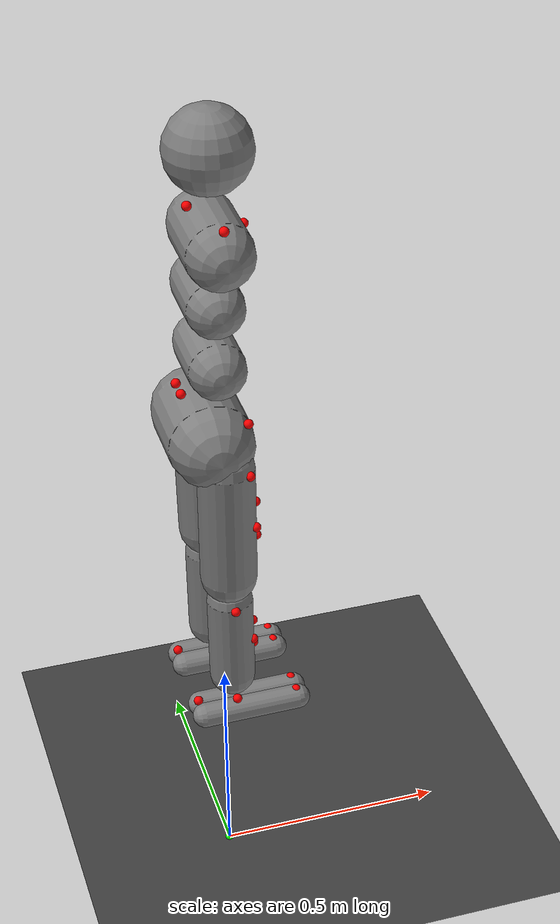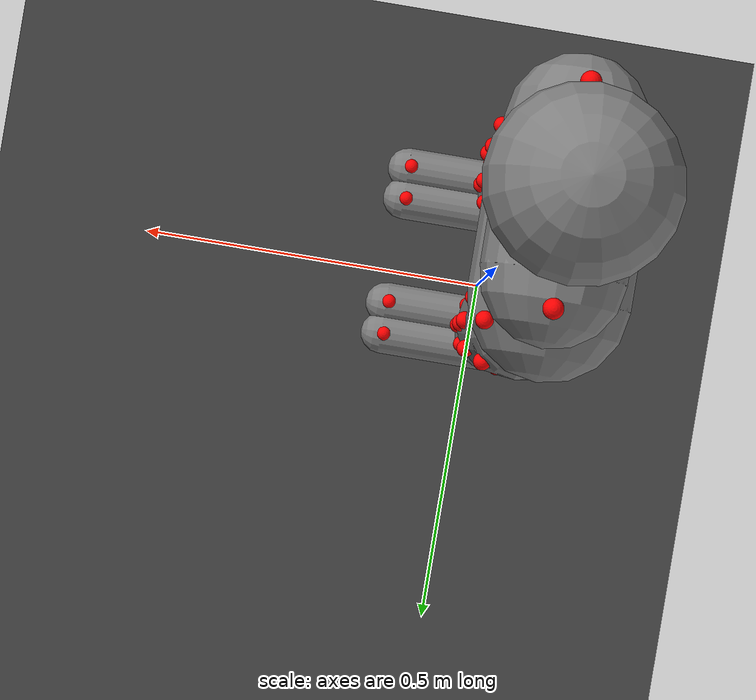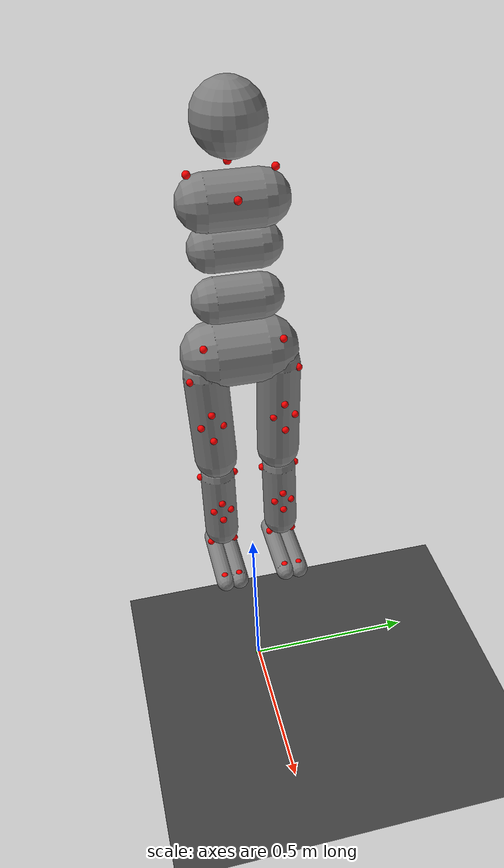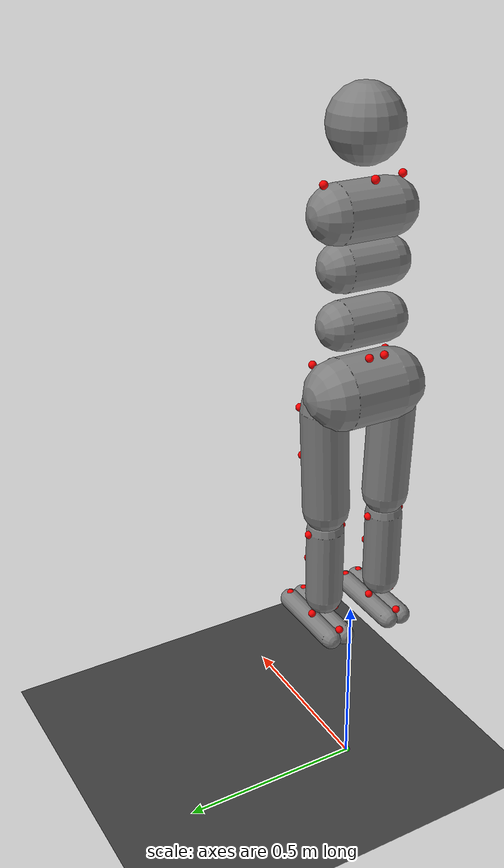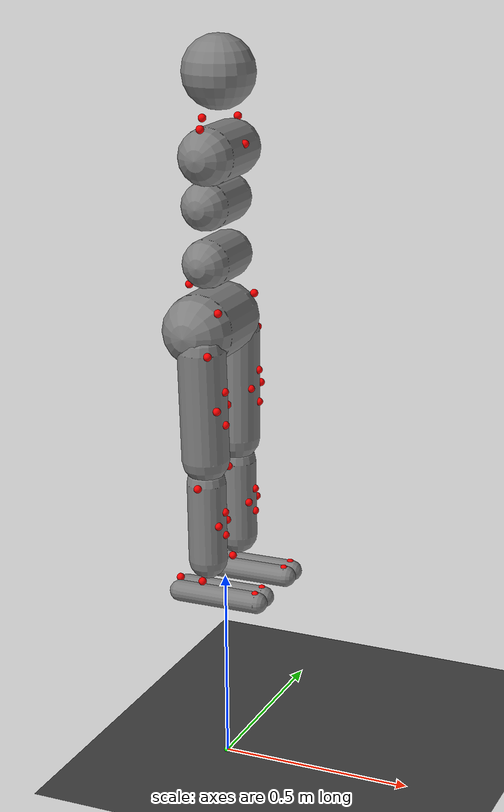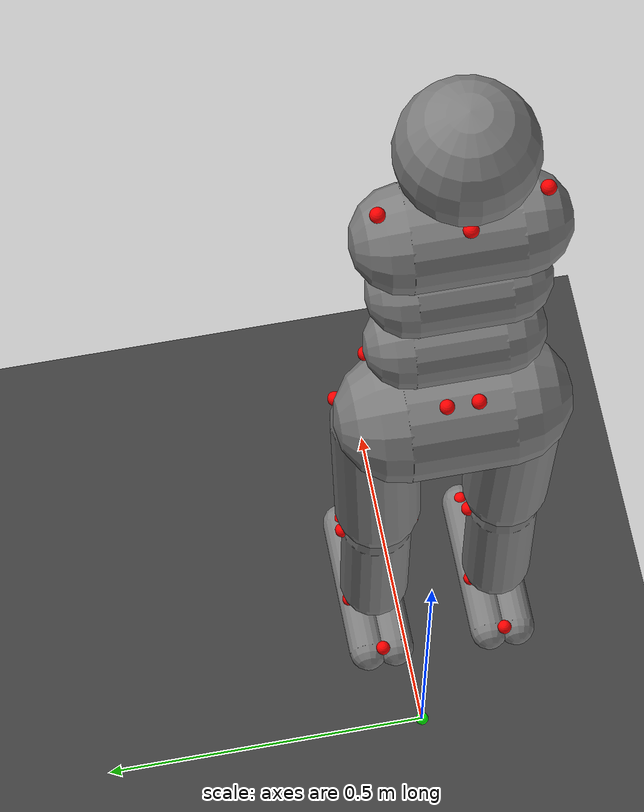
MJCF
<mujoco model="humanoid">
  <default>
    <default class="/"/>
    <default class="left_leg/"/>
    <default class="right_leg/"/>
  </default>
  <asset>
    <texture name="texplane" type="2d" builtin="checker" rgb1="0.20000000000000001 0.20000000000000001 0.20000000000000001" rgb2="0.29999999999999999 0.29999999999999999 0.29999999999999999" width="512" height="512"/>
    <material name="grid" class="/" texture="texplane" texrepeat="1 1" texuniform="true" reflectance="0.0"/>
  </asset>
  <worldbody>
    <geom name="floor" class="/" type="plane" conaffinity="1" size="100 100 0.20000000000000001" material="grid" pos="0 0 0"/>
    <body name="torso" pos="0 0 1.5919999999999999">
      <light name="top" class="/" mode="trackcom" pos="0 0 2"/>
      <camera name="back" class="/" mode="trackcom" pos="-3 0 1" xyaxes="0 -1 0 1 0 2"/>
      <camera name="side" class="/" mode="trackcom" pos="0 -3 1" xyaxes="1 0 0 0 1 2"/>
      <freejoint name="root"/>
      <geom name="torso" class="/" type="capsule" size="0.070000000000000007" fromto="0 -0.070000000000000007 0 0 0.070000000000000007 0"/>
      <site name="C7" class="/" type="sphere" rgba="1 0 0 1" size="0.01" pos="-0.044999999999999978 0 0.077942286340599479"/>
      <site name="CLAV" class="/" type="sphere" rgba="1 0 0 1" size="0.01" pos="0.065778483455013595 0 0.023941410032796814"/>
      <site name="LSHO" class="/" type="sphere" rgba="1 0 0 1" size="0.01" pos="4.2862637970157367e-18 0.10500000000000001 0.070000000000000007"/>
      <site name="RSHO" class="/" type="sphere" rgba="1 0 0 1" size="0.01" pos="4.2862637970157367e-18 -0.10500000000000001 0.070000000000000007"/>
      <geom name="upper_waist" class="/" type="capsule" size="0.059999999999999998" fromto="-0.01 -0.059999999999999998 -0.12 -0.01 0.059999999999999998 -0.12"/>
      <body name="head" pos="0 0 0.19">
        <geom name="head" class="/" type="sphere" size="0.089999999999999997" pos="0 0 0"/>
      </body>
      <camera name="egocentric" class="/" fovy="80.0" pos="0.089999999999999997 0 0" xyaxes="0 -1 0 0.10000000000000001 1 2"/>
      <body name="lower_waist" pos="-0.01 0 -0.26000000000000001" quat="1 0 -0.002 0">
        <geom name="lower_waist" class="/" type="capsule" size="0.059999999999999998" fromto="0 -0.059999999999999998 0 0 0.059999999999999998 0"/>
        <joint name="abdomen_z" class="/" type="hinge" pos="0 0 0.065000000000000002" axis="0 0 1" limited="true" solimplimit="0 0.98999999999999999 0.01" stiffness="20.0" range="-45 45" armature="0.01" damping="5.0"/>
        <joint name="abdomen_y" class="/" type="hinge" pos="0 0 0.065000000000000002" axis="0 1 0" limited="true" solimplimit="0 0.98999999999999999 0.01" stiffness="10.0" range="-75 30" armature="0.01" damping="5.0"/>
        <body name="pelvis" pos="0 0 -0.16500000000000001" quat="1 0 -0.002 0">
          <joint name="abdomen_x" class="/" type="hinge" pos="0 0 0.10000000000000001" axis="1 0 0" limited="true" solimplimit="0 0.98999999999999999 0.01" stiffness="10.0" range="-35 35" armature="0.01" damping="5.0"/>
          <geom name="butt" class="/" type="capsule" size="0.089999999999999997" fromto="-0.02 -0.070000000000000007 0 -0.02 0.070000000000000007 0"/>
          <site name="LASI" class="/" type="sphere" rgba="1 0 0 1" size="0.01" pos="0.048943999880708008 0.10500000000000001 0.057850884871788529"/>
          <site name="LPSI" class="/" type="sphere" rgba="1 0 0 1" size="0.01" pos="-0.066488008791476927 0.021000000000000001 0.0996938565740315"/>
          <site name="RASI" class="/" type="sphere" rgba="1 0 0 1" size="0.01" pos="0.048943999880708008 -0.10500000000000001 0.057850884871788529"/>
          <site name="RPSI" class="/" type="sphere" rgba="1 0 0 1" size="0.01" pos="-0.066488008791476927 -0.021000000000000001 0.0996938565740315"/>
          <site name="left_leg_site" class="/" size="9.9999999999999995e-07 9.9999999999999995e-07 9.9999999999999995e-07" pos="0 0.10000000000000001 -0.040000000000000001"/>
          <body pos="0 0.10000000000000001 -0.040000000000000001" name="left_leg/">
            <body name="left_leg/thigh">
              <joint name="left_leg/hip_x" class="left_leg/" type="hinge" axis="1 0 0" limited="true" solimplimit="0 0.98999999999999999 0.01" stiffness="10.0" range="-25 5" armature="0.01" damping="5.0"/>
              <joint name="left_leg/hip_z" class="left_leg/" type="hinge" axis="0 0 1" limited="true" solimplimit="0 0.98999999999999999 0.01" stiffness="10.0" range="-60 35" armature="0.01" damping="5.0"/>
              <joint name="left_leg/hip_y" class="left_leg/" type="hinge" axis="0 1 0" limited="true" solimplimit="0 0.98999999999999999 0.01" stiffness="20.0" range="-110 20" armature="0.01" damping="5.0"/>
              <geom name="left_leg/thigh" class="left_leg/" type="capsule" size="0.059999999999999998" fromto="0 0 0 0 -0.01 -0.28000000000000003"/>
              <site name="left_leg/LGT" class="left_leg/" type="sphere" rgba="1 0 0 1" size="0.01" pos="0.038567256581192359 0.045962666587138677 0"/>
              <site name="left_leg/LT1" class="left_leg/" type="sphere" rgba="1 0 0 1" size="0.01" pos="0.059999999999999998 0 -0.098000000000000004"/>
              <site name="left_leg/LT2" class="left_leg/" type="sphere" rgba="1 0 0 1" size="0.01" pos="0.051961524227066319 0.029999999999999995 -0.14000000000000001"/>
              <site name="left_leg/LT3" class="left_leg/" type="sphere" rgba="1 0 0 1" size="0.01" pos="0.059999999999999998 0 -0.18200000000000002"/>
              <site name="left_leg/LT4" class="left_leg/" type="sphere" rgba="1 0 0 1" size="0.01" pos="0.051961524227066319 -0.029999999999999995 -0.14000000000000001"/>
              <body name="left_leg/shin" pos="0 -0.01 -0.34300000000000003">
                <joint name="left_leg/knee" class="left_leg/" type="hinge" pos="0 0 0.02" axis="0 -1 0" limited="true" solimplimit="0 0.98999999999999999 0.01" stiffness="1.0" range="-160 2" armature="0.01" damping="0.2"/>
                <geom name="left_leg/shin" class="left_leg/" type="capsule" size="0.049000000000000002" fromto="0 0 0 0 0 -0.20199999999999999"/>
                <site name="left_leg/LKNL" class="left_leg/" type="sphere" rgba="1 0 0 1" size="0.01" pos="3.0003846579110156e-18 0.049000000000000002 0"/>
                <site name="left_leg/LKNM" class="left_leg/" type="sphere" rgba="1 0 0 1" size="0.01" pos="-9.0011539737330462e-18 -0.049000000000000002 0"/>
                <site name="left_leg/LS1" class="left_leg/" type="sphere" rgba="1 0 0 1" size="0.01" pos="0.049000000000000002 0 -0.070699999999999999"/>
                <site name="left_leg/LS2" class="left_leg/" type="sphere" rgba="1 0 0 1" size="0.01" pos="0.042435244785437497 0.024499999999999997 -0.10099999999999999"/>
                <site name="left_leg/LS3" class="left_leg/" type="sphere" rgba="1 0 0 1" size="0.01" pos="0.049000000000000002 0 -0.1313"/>
                <site name="left_leg/LS4" class="left_leg/" type="sphere" rgba="1 0 0 1" size="0.01" pos="0.042435244785437497 -0.024499999999999997 -0.10099999999999999"/>
                <body name="left_leg/foot" pos="0 0 -0.29200000000000004">
                  <joint name="left_leg/ankle_y" class="left_leg/" type="hinge" pos="0 0 0.080000000000000002" axis="0 1 0" limited="true" solimplimit="0 0.98999999999999999 0.01" stiffness="6.0" range="-50 50" armature="0.01" damping="0.2"/>
                  <joint name="left_leg/ankle_x" class="left_leg/" type="hinge" pos="0 0 0.040000000000000001" axis="1 0 0.5" limited="true" solimplimit="0 0.98999999999999999 0.01" stiffness="3.0" range="-50 50" armature="0.01" damping="0.2"/>
                  <geom name="left_leg/right_foot" class="left_leg/" type="capsule" size="0.027" fromto="-0.070000000000000007 0.02 0 0.14000000000000001 0.02 0"/>
                  <geom name="left_leg/left_foot" class="left_leg/" type="capsule" size="0.027" fromto="-0.070000000000000007 -0.02 0 0.14000000000000001 -0.02 0"/>
                  <site name="left_leg/LANL" class="left_leg/" type="sphere" rgba="1 0 0 1" size="0.01" pos="0 0.035353318532759664 0.042132444371543794"/>
                  <site name="left_leg/LANM" class="left_leg/" type="sphere" rgba="1 0 0 1" size="0.01" pos="0 -0.035353318532759664 0.042132444371543794"/>
                  <site name="left_leg/LHEE" class="left_leg/" type="sphere" rgba="1 0 0 1" size="0.01" pos="-0.078750000000000014 1.6532731788489268e-18 0.027"/>
                  <site name="left_leg/LM1" class="left_leg/" type="sphere" rgba="1 0 0 1" size="0.01" pos="0.13650000000000001 -0.021213203435596423 0.021213203435596427"/>
                  <site name="left_leg/LM5" class="left_leg/" type="sphere" rgba="1 0 0 1" size="0.01" pos="0.13650000000000001 0.021213203435596427 0.021213203435596423"/>
                  <body name="left_leg/ffp_0_0" pos="-0.070000000000000007 -0.047 -0.027"/>
                  <body name="left_leg/ffp_0_1" pos="-0.070000000000000007 -0.025399999999999999 -0.027"/>
                  <body name="left_leg/ffp_0_2" pos="-0.070000000000000007 -0.0037999999999999978 -0.027"/>
                  <body name="left_leg/ffp_0_3" pos="-0.070000000000000007 0.017799999999999993 -0.027"/>
                  <body name="left_leg/ffp_0_4" pos="-0.070000000000000007 0.039400000000000004 -0.027"/>
                  <body name="left_leg/ffp_1_0" pos="-0.049000000000000002 -0.047 -0.027"/>
                  <body name="left_leg/ffp_1_1" pos="-0.049000000000000002 -0.025399999999999999 -0.027"/>
                  <body name="left_leg/ffp_1_2" pos="-0.049000000000000002 -0.0037999999999999978 -0.027"/>
                  <body name="left_leg/ffp_1_3" pos="-0.049000000000000002 0.017799999999999993 -0.027"/>
                  <body name="left_leg/ffp_1_4" pos="-0.049000000000000002 0.039400000000000004 -0.027"/>
                  <body name="left_leg/ffp_2_0" pos="-0.028000000000000004 -0.047 -0.027"/>
                  <body name="left_leg/ffp_2_1" pos="-0.028000000000000004 -0.025399999999999999 -0.027"/>
                  <body name="left_leg/ffp_2_2" pos="-0.028000000000000004 -0.0037999999999999978 -0.027"/>
                  <body name="left_leg/ffp_2_3" pos="-0.028000000000000004 0.017799999999999993 -0.027"/>
                  <body name="left_leg/ffp_2_4" pos="-0.028000000000000004 0.039400000000000004 -0.027"/>
                  <body name="left_leg/ffp_3_0" pos="-0.0070000000000000062 -0.047 -0.027"/>
                  <body name="left_leg/ffp_3_1" pos="-0.0070000000000000062 -0.025399999999999999 -0.027"/>
                  <body name="left_leg/ffp_3_2" pos="-0.0070000000000000062 -0.0037999999999999978 -0.027"/>
                  <body name="left_leg/ffp_3_3" pos="-0.0070000000000000062 0.017799999999999993 -0.027"/>
                  <body name="left_leg/ffp_3_4" pos="-0.0070000000000000062 0.039400000000000004 -0.027"/>
                  <body name="left_leg/ffp_4_0" pos="0.013999999999999999 -0.047 -0.027"/>
                  <body name="left_leg/ffp_4_1" pos="0.013999999999999999 -0.025399999999999999 -0.027"/>
                  <body name="left_leg/ffp_4_2" pos="0.013999999999999999 -0.0037999999999999978 -0.027"/>
                  <body name="left_leg/ffp_4_3" pos="0.013999999999999999 0.017799999999999993 -0.027"/>
                  <body name="left_leg/ffp_4_4" pos="0.013999999999999999 0.039400000000000004 -0.027"/>
                  <body name="left_leg/ffp_5_0" pos="0.035000000000000003 -0.047 -0.027"/>
                  <body name="left_leg/ffp_5_1" pos="0.035000000000000003 -0.025399999999999999 -0.027"/>
                  <body name="left_leg/ffp_5_2" pos="0.035000000000000003 -0.0037999999999999978 -0.027"/>
                  <body name="left_leg/ffp_5_3" pos="0.035000000000000003 0.017799999999999993 -0.027"/>
                  <body name="left_leg/ffp_5_4" pos="0.035000000000000003 0.039400000000000004 -0.027"/>
                  <body name="left_leg/ffp_6_0" pos="0.055999999999999994 -0.047 -0.027"/>
                  <body name="left_leg/ffp_6_1" pos="0.055999999999999994 -0.025399999999999999 -0.027"/>
                  <body name="left_leg/ffp_6_2" pos="0.055999999999999994 -0.0037999999999999978 -0.027"/>
                  <body name="left_leg/ffp_6_3" pos="0.055999999999999994 0.017799999999999993 -0.027"/>
                  <body name="left_leg/ffp_6_4" pos="0.055999999999999994 0.039400000000000004 -0.027"/>
                  <body name="left_leg/ffp_7_0" pos="0.077000000000000013 -0.047 -0.027"/>
                  <body name="left_leg/ffp_7_1" pos="0.077000000000000013 -0.025399999999999999 -0.027"/>
                  <body name="left_leg/ffp_7_2" pos="0.077000000000000013 -0.0037999999999999978 -0.027"/>
                  <body name="left_leg/ffp_7_3" pos="0.077000000000000013 0.017799999999999993 -0.027"/>
                  <body name="left_leg/ffp_7_4" pos="0.077000000000000013 0.039400000000000004 -0.027"/>
                  <body name="left_leg/ffp_8_0" pos="0.098000000000000004 -0.047 -0.027"/>
                  <body name="left_leg/ffp_8_1" pos="0.098000000000000004 -0.025399999999999999 -0.027"/>
                  <body name="left_leg/ffp_8_2" pos="0.098000000000000004 -0.0037999999999999978 -0.027"/>
                  <body name="left_leg/ffp_8_3" pos="0.098000000000000004 0.017799999999999993 -0.027"/>
                  <body name="left_leg/ffp_8_4" pos="0.098000000000000004 0.039400000000000004 -0.027"/>
                  <body name="left_leg/ffp_9_0" pos="0.11899999999999999 -0.047 -0.027"/>
                  <body name="left_leg/ffp_9_1" pos="0.11899999999999999 -0.025399999999999999 -0.027"/>
                  <body name="left_leg/ffp_9_2" pos="0.11899999999999999 -0.0037999999999999978 -0.027"/>
                  <body name="left_leg/ffp_9_3" pos="0.11899999999999999 0.017799999999999993 -0.027"/>
                  <body name="left_leg/ffp_9_4" pos="0.11899999999999999 0.039400000000000004 -0.027"/>
                </body>
              </body>
            </body>
          </body>
          <site name="right_leg_site" class="/" size="9.9999999999999995e-07 9.9999999999999995e-07 9.9999999999999995e-07" pos="0 -0.10000000000000001 -0.040000000000000001"/>
          <body pos="0 -0.10000000000000001 -0.040000000000000001" name="right_leg/">
            <body name="right_leg/thigh">
              <joint name="right_leg/hip_x" class="right_leg/" type="hinge" axis="1 0 0" limited="true" solimplimit="0 0.98999999999999999 0.01" stiffness="10.0" range="-25 5" armature="0.01" damping="5.0"/>
              <joint name="right_leg/hip_z" class="right_leg/" type="hinge" axis="0 0 1" limited="true" solimplimit="0 0.98999999999999999 0.01" stiffness="10.0" range="-60 35" armature="0.01" damping="5.0"/>
              <joint name="right_leg/hip_y" class="right_leg/" type="hinge" axis="0 1 0" limited="true" solimplimit="0 0.98999999999999999 0.01" stiffness="20.0" range="-110 20" armature="0.01" damping="5.0"/>
              <geom name="right_leg/thigh" class="right_leg/" type="capsule" size="0.059999999999999998" fromto="0 0 0 0 0.01 -0.28000000000000003"/>
              <site name="right_leg/RGT" class="right_leg/" type="sphere" rgba="1 0 0 1" size="0.01" pos="0.038567256581192352 -0.045962666587138684 0"/>
              <site name="right_leg/RT1" class="right_leg/" type="sphere" rgba="1 0 0 1" size="0.01" pos="0.059999999999999998 0 -0.098000000000000004"/>
              <site name="right_leg/RT2" class="right_leg/" type="sphere" rgba="1 0 0 1" size="0.01" pos="0.051961524227066319 0.029999999999999995 -0.14000000000000001"/>
              <site name="right_leg/RT3" class="right_leg/" type="sphere" rgba="1 0 0 1" size="0.01" pos="0.059999999999999998 0 -0.18200000000000002"/>
              <site name="right_leg/RT4" class="right_leg/" type="sphere" rgba="1 0 0 1" size="0.01" pos="0.051961524227066319 -0.029999999999999995 -0.14000000000000001"/>
              <body name="right_leg/shin" pos="0 0.01 -0.34300000000000003">
                <joint name="right_leg/knee" class="right_leg/" type="hinge" pos="0 0 0.02" axis="0 -1 0" limited="true" solimplimit="0 0.98999999999999999 0.01" stiffness="1.0" range="-160 2" armature="0.01" damping="0.2"/>
                <geom name="right_leg/shin" class="right_leg/" type="capsule" size="0.049000000000000002" fromto="0 0 0 0 0 -0.20199999999999999"/>
                <site name="right_leg/RKNL" class="right_leg/" type="sphere" rgba="1 0 0 1" size="0.01" pos="-9.0011539737330462e-18 -0.049000000000000002 0"/>
                <site name="right_leg/RKNM" class="right_leg/" type="sphere" rgba="1 0 0 1" size="0.01" pos="3.0003846579110156e-18 0.049000000000000002 0"/>
                <site name="right_leg/RS1" class="right_leg/" type="sphere" rgba="1 0 0 1" size="0.01" pos="0.049000000000000002 0 -0.070699999999999999"/>
                <site name="right_leg/RS2" class="right_leg/" type="sphere" rgba="1 0 0 1" size="0.01" pos="0.042435244785437497 0.024499999999999997 -0.10099999999999999"/>
                <site name="right_leg/RS3" class="right_leg/" type="sphere" rgba="1 0 0 1" size="0.01" pos="0.049000000000000002 0 -0.1313"/>
                <site name="right_leg/RS4" class="right_leg/" type="sphere" rgba="1 0 0 1" size="0.01" pos="0.042435244785437497 -0.024499999999999997 -0.10099999999999999"/>
                <body name="right_leg/foot" pos="0 0 -0.29200000000000004">
                  <joint name="right_leg/ankle_y" class="right_leg/" type="hinge" pos="0 0 0.080000000000000002" axis="0 1 0" limited="true" solimplimit="0 0.98999999999999999 0.01" stiffness="6.0" range="-50 50" armature="0.01" damping="0.2"/>
                  <joint name="right_leg/ankle_x" class="right_leg/" type="hinge" pos="0 0 0.040000000000000001" axis="1 0 0.5" limited="true" solimplimit="0 0.98999999999999999 0.01" stiffness="3.0" range="-50 50" armature="0.01" damping="0.2"/>
                  <geom name="right_leg/right_foot" class="right_leg/" type="capsule" size="0.027" fromto="-0.070000000000000007 -0.02 0 0.14000000000000001 -0.02 0"/>
                  <geom name="right_leg/left_foot" class="right_leg/" type="capsule" size="0.027" fromto="-0.070000000000000007 0.02 0 0.14000000000000001 0.02 0"/>
                  <site name="right_leg/RANL" class="right_leg/" type="sphere" rgba="1 0 0 1" size="0.01" pos="0 -0.035353318532759664 0.042132444371543794"/>
                  <site name="right_leg/RANM" class="right_leg/" type="sphere" rgba="1 0 0 1" size="0.01" pos="0 0.035353318532759664 0.042132444371543794"/>
                  <site name="right_leg/RHEE" class="right_leg/" type="sphere" rgba="1 0 0 1" size="0.01" pos="-0.078750000000000014 1.6532731788489268e-18 0.027"/>
                  <site name="right_leg/RM1" class="right_leg/" type="sphere" rgba="1 0 0 1" size="0.01" pos="0.13650000000000001 0.021213203435596427 0.021213203435596423"/>
                  <site name="right_leg/RM5" class="right_leg/" type="sphere" rgba="1 0 0 1" size="0.01" pos="0.13650000000000001 -0.021213203435596423 0.021213203435596427"/>
                  <body name="right_leg/ffp_0_0" pos="-0.070000000000000007 -0.047 -0.027"/>
                  <body name="right_leg/ffp_0_1" pos="-0.070000000000000007 -0.025399999999999999 -0.027"/>
                  <body name="right_leg/ffp_0_2" pos="-0.070000000000000007 -0.0037999999999999978 -0.027"/>
                  <body name="right_leg/ffp_0_3" pos="-0.070000000000000007 0.017799999999999993 -0.027"/>
                  <body name="right_leg/ffp_0_4" pos="-0.070000000000000007 0.039400000000000004 -0.027"/>
                  <body name="right_leg/ffp_1_0" pos="-0.049000000000000002 -0.047 -0.027"/>
                  <body name="right_leg/ffp_1_1" pos="-0.049000000000000002 -0.025399999999999999 -0.027"/>
                  <body name="right_leg/ffp_1_2" pos="-0.049000000000000002 -0.0037999999999999978 -0.027"/>
                  <body name="right_leg/ffp_1_3" pos="-0.049000000000000002 0.017799999999999993 -0.027"/>
                  <body name="right_leg/ffp_1_4" pos="-0.049000000000000002 0.039400000000000004 -0.027"/>
                  <body name="right_leg/ffp_2_0" pos="-0.028000000000000004 -0.047 -0.027"/>
                  <body name="right_leg/ffp_2_1" pos="-0.028000000000000004 -0.025399999999999999 -0.027"/>
                  <body name="right_leg/ffp_2_2" pos="-0.028000000000000004 -0.0037999999999999978 -0.027"/>
                  <body name="right_leg/ffp_2_3" pos="-0.028000000000000004 0.017799999999999993 -0.027"/>
                  <body name="right_leg/ffp_2_4" pos="-0.028000000000000004 0.039400000000000004 -0.027"/>
                  <body name="right_leg/ffp_3_0" pos="-0.0070000000000000062 -0.047 -0.027"/>
                  <body name="right_leg/ffp_3_1" pos="-0.0070000000000000062 -0.025399999999999999 -0.027"/>
                  <body name="right_leg/ffp_3_2" pos="-0.0070000000000000062 -0.0037999999999999978 -0.027"/>
                  <body name="right_leg/ffp_3_3" pos="-0.0070000000000000062 0.017799999999999993 -0.027"/>
                  <body name="right_leg/ffp_3_4" pos="-0.0070000000000000062 0.039400000000000004 -0.027"/>
                  <body name="right_leg/ffp_4_0" pos="0.013999999999999999 -0.047 -0.027"/>
                  <body name="right_leg/ffp_4_1" pos="0.013999999999999999 -0.025399999999999999 -0.027"/>
                  <body name="right_leg/ffp_4_2" pos="0.013999999999999999 -0.0037999999999999978 -0.027"/>
                  <body name="right_leg/ffp_4_3" pos="0.013999999999999999 0.017799999999999993 -0.027"/>
                  <body name="right_leg/ffp_4_4" pos="0.013999999999999999 0.039400000000000004 -0.027"/>
                  <body name="right_leg/ffp_5_0" pos="0.035000000000000003 -0.047 -0.027"/>
                  <body name="right_leg/ffp_5_1" pos="0.035000000000000003 -0.025399999999999999 -0.027"/>
                  <body name="right_leg/ffp_5_2" pos="0.035000000000000003 -0.0037999999999999978 -0.027"/>
                  <body name="right_leg/ffp_5_3" pos="0.035000000000000003 0.017799999999999993 -0.027"/>
                  <body name="right_leg/ffp_5_4" pos="0.035000000000000003 0.039400000000000004 -0.027"/>
                  <body name="right_leg/ffp_6_0" pos="0.055999999999999994 -0.047 -0.027"/>
                  <body name="right_leg/ffp_6_1" pos="0.055999999999999994 -0.025399999999999999 -0.027"/>
                  <body name="right_leg/ffp_6_2" pos="0.055999999999999994 -0.0037999999999999978 -0.027"/>
                  <body name="right_leg/ffp_6_3" pos="0.055999999999999994 0.017799999999999993 -0.027"/>
                  <body name="right_leg/ffp_6_4" pos="0.055999999999999994 0.039400000000000004 -0.027"/>
                  <body name="right_leg/ffp_7_0" pos="0.077000000000000013 -0.047 -0.027"/>
                  <body name="right_leg/ffp_7_1" pos="0.077000000000000013 -0.025399999999999999 -0.027"/>
                  <body name="right_leg/ffp_7_2" pos="0.077000000000000013 -0.0037999999999999978 -0.027"/>
                  <body name="right_leg/ffp_7_3" pos="0.077000000000000013 0.017799999999999993 -0.027"/>
                  <body name="right_leg/ffp_7_4" pos="0.077000000000000013 0.039400000000000004 -0.027"/>
                  <body name="right_leg/ffp_8_0" pos="0.098000000000000004 -0.047 -0.027"/>
                  <body name="right_leg/ffp_8_1" pos="0.098000000000000004 -0.025399999999999999 -0.027"/>
                  <body name="right_leg/ffp_8_2" pos="0.098000000000000004 -0.0037999999999999978 -0.027"/>
                  <body name="right_leg/ffp_8_3" pos="0.098000000000000004 0.017799999999999993 -0.027"/>
                  <body name="right_leg/ffp_8_4" pos="0.098000000000000004 0.039400000000000004 -0.027"/>
                  <body name="right_leg/ffp_9_0" pos="0.11899999999999999 -0.047 -0.027"/>
                  <body name="right_leg/ffp_9_1" pos="0.11899999999999999 -0.025399999999999999 -0.027"/>
                  <body name="right_leg/ffp_9_2" pos="0.11899999999999999 -0.0037999999999999978 -0.027"/>
                  <body name="right_leg/ffp_9_3" pos="0.11899999999999999 0.017799999999999993 -0.027"/>
                  <body name="right_leg/ffp_9_4" pos="0.11899999999999999 0.039400000000000004 -0.027"/>
                </body>
              </body>
            </body>
          </body>
        </body>
      </body>
    </body>
    <body name="m0" mocap="true" pos="0 0 0">
      <geom name="m0" class="/" type="sphere" size="0.01" rgba="0 1 0 1"/>
    </body>
    <body name="m1" mocap="true" pos="0 0 0">
      <geom name="m1" class="/" type="sphere" size="0.01" rgba="0 1 0 1"/>
    </body>
    <body name="m2" mocap="true" pos="0 0 0">
      <geom name="m2" class="/" type="sphere" size="0.01" rgba="0 1 0 1"/>
    </body>
    <body name="m3" mocap="true" pos="0 0 0">
      <geom name="m3" class="/" type="sphere" size="0.01" rgba="0 1 0 1"/>
    </body>
    <body name="m4" mocap="true" pos="0 0 0">
      <geom name="m4" class="/" type="sphere" size="0.01" rgba="0 1 0 1"/>
    </body>
    <body name="m5" mocap="true" pos="0 0 0">
      <geom name="m5" class="/" type="sphere" size="0.01" rgba="0 1 0 1"/>
    </body>
    <body name="m6" mocap="true" pos="0 0 0">
      <geom name="m6" class="/" type="sphere" size="0.01" rgba="0 1 0 1"/>
    </body>
    <body name="m7" mocap="true" pos="0 0 0">
      <geom name="m7" class="/" type="sphere" size="0.01" rgba="0 1 0 1"/>
    </body>
    <body name="m8" mocap="true" pos="0 0 0">
      <geom name="m8" class="/" type="sphere" size="0.01" rgba="0 1 0 1"/>
    </body>
    <body name="m9" mocap="true" pos="0 0 0">
      <geom name="m9" class="/" type="sphere" size="0.01" rgba="0 1 0 1"/>
    </body>
    <body name="m10" mocap="true" pos="0 0 0">
      <geom name="m10" class="/" type="sphere" size="0.01" rgba="0 1 0 1"/>
    </body>
    <body name="m11" mocap="true" pos="0 0 0">
      <geom name="m11" class="/" type="sphere" size="0.01" rgba="0 1 0 1"/>
    </body>
    <body name="m12" mocap="true" pos="0 0 0">
      <geom name="m12" class="/" type="sphere" size="0.01" rgba="0 1 0 1"/>
    </body>
    <body name="m13" mocap="true" pos="0 0 0">
      <geom name="m13" class="/" type="sphere" size="0.01" rgba="0 1 0 1"/>
    </body>
    <body name="m14" mocap="true" pos="0 0 0">
      <geom name="m14" class="/" type="sphere" size="0.01" rgba="0 1 0 1"/>
    </body>
    <body name="m15" mocap="true" pos="0 0 0">
      <geom name="m15" class="/" type="sphere" size="0.01" rgba="0 1 0 1"/>
    </body>
    <body name="m16" mocap="true" pos="0 0 0">
      <geom name="m16" class="/" type="sphere" size="0.01" rgba="0 1 0 1"/>
    </body>
    <body name="m17" mocap="true" pos="0 0 0">
      <geom name="m17" class="/" type="sphere" size="0.01" rgba="0 1 0 1"/>
    </body>
    <body name="m18" mocap="true" pos="0 0 0">
      <geom name="m18" class="/" type="sphere" size="0.01" rgba="0 1 0 1"/>
    </body>
    <body name="m19" mocap="true" pos="0 0 0">
      <geom name="m19" class="/" type="sphere" size="0.01" rgba="0 1 0 1"/>
    </body>
    <body name="m20" mocap="true" pos="0 0 0">
      <geom name="m20" class="/" type="sphere" size="0.01" rgba="0 1 0 1"/>
    </body>
    <body name="m21" mocap="true" pos="0 0 0">
      <geom name="m21" class="/" type="sphere" size="0.01" rgba="0 1 0 1"/>
    </body>
    <body name="m22" mocap="true" pos="0 0 0">
      <geom name="m22" class="/" type="sphere" size="0.01" rgba="0 1 0 1"/>
    </body>
    <body name="m23" mocap="true" pos="0 0 0">
      <geom name="m23" class="/" type="sphere" size="0.01" rgba="0 1 0 1"/>
    </body>
    <body name="m24" mocap="true" pos="0 0 0">
      <geom name="m24" class="/" type="sphere" size="0.01" rgba="0 1 0 1"/>
    </body>
    <body name="m25" mocap="true" pos="0 0 0">
      <geom name="m25" class="/" type="sphere" size="0.01" rgba="0 1 0 1"/>
    </body>
    <body name="m26" mocap="true" pos="0 0 0">
      <geom name="m26" class="/" type="sphere" size="0.01" rgba="0 1 0 1"/>
    </body>
    <body name="m27" mocap="true" pos="0 0 0">
      <geom name="m27" class="/" type="sphere" size="0.01" rgba="0 1 0 1"/>
    </body>
    <body name="m28" mocap="true" pos="0 0 0">
      <geom name="m28" class="/" type="sphere" size="0.01" rgba="0 1 0 1"/>
    </body>
    <body name="m29" mocap="true" pos="0 0 0">
      <geom name="m29" class="/" type="sphere" size="0.01" rgba="0 1 0 1"/>
    </body>
    <body name="m30" mocap="true" pos="0 0 0">
      <geom name="m30" class="/" type="sphere" size="0.01" rgba="0 1 0 1"/>
    </body>
    <body name="m31" mocap="true" pos="0 0 0">
      <geom name="m31" class="/" type="sphere" size="0.01" rgba="0 1 0 1"/>
    </body>
    <body name="m32" mocap="true" pos="0 0 0">
      <geom name="m32" class="/" type="sphere" size="0.01" rgba="0 1 0 1"/>
    </body>
    <body name="m33" mocap="true" pos="0 0 0">
      <geom name="m33" class="/" type="sphere" size="0.01" rgba="0 1 0 1"/>
    </body>
    <body name="m34" mocap="true" pos="0 0 0">
      <geom name="m34" class="/" type="sphere" size="0.01" rgba="0 1 0 1"/>
    </body>
    <body name="m35" mocap="true" pos="0 0 0">
      <geom name="m35" class="/" type="sphere" size="0.01" rgba="0 1 0 1"/>
    </body>
    <body name="m36" mocap="true" pos="0 0 0">
      <geom name="m36" class="/" type="sphere" size="0.01" rgba="0 1 0 1"/>
    </body>
    <body name="m37" mocap="true" pos="0 0 0">
      <geom name="m37" class="/" type="sphere" size="0.01" rgba="0 1 0 1"/>
    </body>
    <body name="m38" mocap="true" pos="0 0 0">
      <geom name="m38" class="/" type="sphere" size="0.01" rgba="0 1 0 1"/>
    </body>
    <body name="m39" mocap="true" pos="0 0 0">
      <geom name="m39" class="/" type="sphere" size="0.01" rgba="0 1 0 1"/>
    </body>
  </worldbody>
  <equality>
    <weld name="world_root" class="/" active="false" body1="torso" relpose="0 0 -2 1 0 0 0"/>
    <joint name="abdomen_y" class="/" active="true" joint1="abdomen_y"/>
    <joint name="abdomen_z" class="/" active="true" joint1="abdomen_z"/>
    <joint name="abdomen_x" class="/" active="true" joint1="abdomen_x"/>
  </equality>
  <actuator>
    <motor name="abdomen_y" class="/" gear="40" joint="abdomen_y"/>
    <motor name="abdomen_z" class="/" gear="40" joint="abdomen_z"/>
    <motor name="abdomen_x" class="/" gear="40" joint="abdomen_x"/>
    <motor name="left_leg/hip_x" class="left_leg/" gear="40" joint="left_leg/hip_x"/>
    <motor name="left_leg/hip_z" class="left_leg/" gear="40" joint="left_leg/hip_z"/>
    <motor name="left_leg/hip_y" class="left_leg/" gear="120" joint="left_leg/hip_y"/>
    <motor name="left_leg/knee" class="left_leg/" gear="80" joint="left_leg/knee"/>
    <motor name="left_leg/ankle_y" class="left_leg/" gear="20" joint="left_leg/ankle_y"/>
    <motor name="left_leg/ankle_x" class="left_leg/" gear="20" joint="left_leg/ankle_x"/>
    <motor name="right_leg/hip_x" class="right_leg/" gear="40" joint="right_leg/hip_x"/>
    <motor name="right_leg/hip_z" class="right_leg/" gear="40" joint="right_leg/hip_z"/>
    <motor name="right_leg/hip_y" class="right_leg/" gear="120" joint="right_leg/hip_y"/>
    <motor name="right_leg/knee" class="right_leg/" gear="80" joint="right_leg/knee"/>
    <motor name="right_leg/ankle_y" class="right_leg/" gear="20" joint="right_leg/ankle_y"/>
    <motor name="right_leg/ankle_x" class="right_leg/" gear="20" joint="right_leg/ankle_x"/>
  </actuator>
</mujoco>
